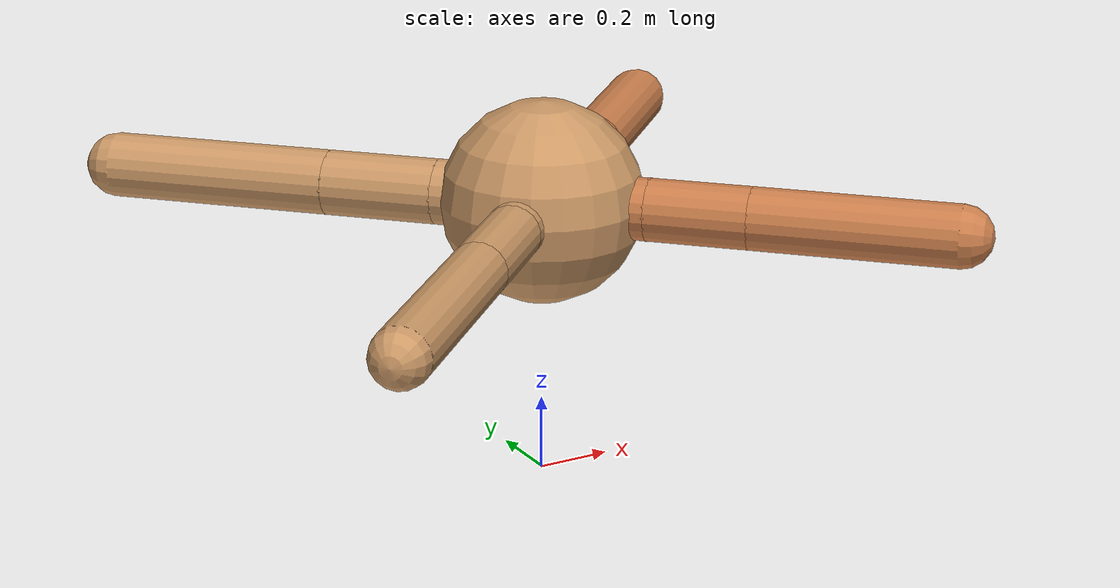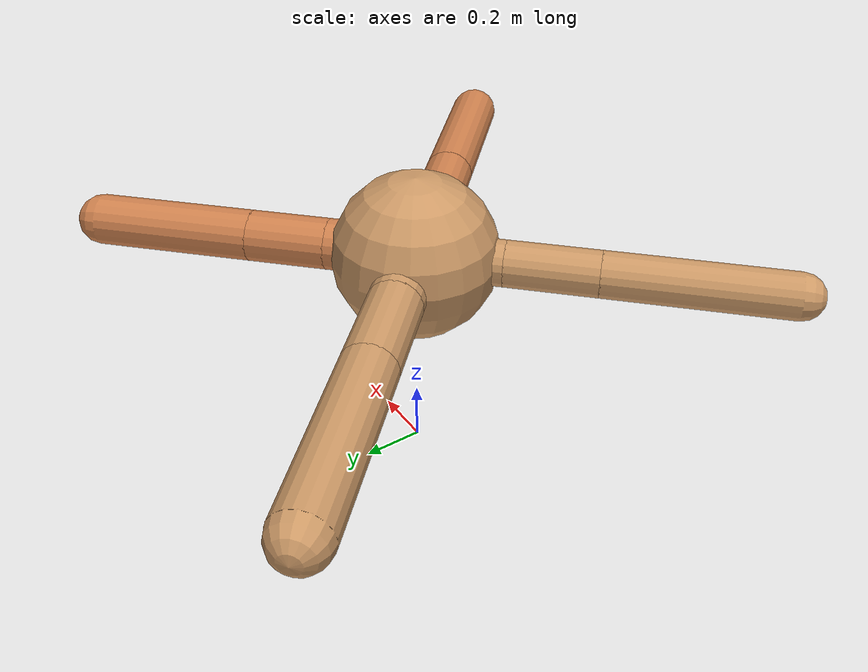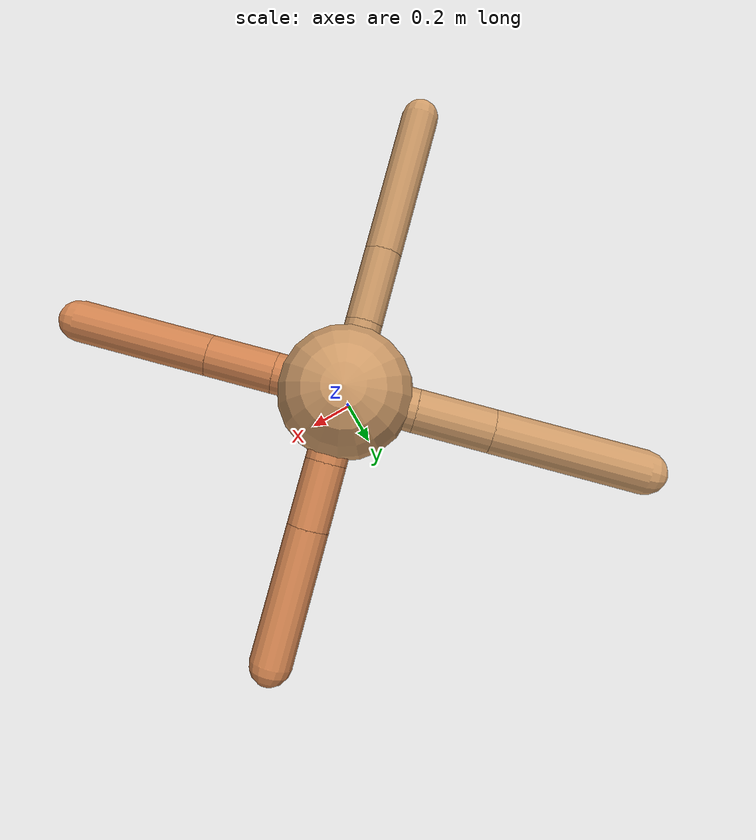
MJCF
<?xml version="1.0" ?>
<mujoco model="ant">

	<compiler angle="degree" coordinate="local" inertiafromgeom="true"/>

	<option integrator="RK4" timestep="0.01"/>

	<custom>

		<numeric data="0.0 0.0 0.55 1.0 0.0 0.0 0.0 0.0 1.0 0.0 -1.0 0.0 -1.0 0.0 1.0" name="init_qpos"/>

	</custom>

	<default>

		<joint armature="1" damping="1" limited="true"/>

		<geom conaffinity="0" condim="3" density="5.0" friction="1.5 0.1 0.1" margin="0.01" rgba="0.8 0.6 0.4 1"/>

	</default>

	<worldbody>

		<body name="torso" pos="0 0 0.75">

			<geom name="torso_geom" pos="0 0 0" size="0.2674514377476636" type="sphere"/>

			<!--joint armature="0" damping="0" limited="false" margin="0.01" name="root" pos="0 0 0" type="free"/-->

			<body name="front_left_leg" pos="0 0 0">

				<geom fromto="0 0 0 0.2 0.2 0" name="aux_1_geom" size="0.08263343891352978" type="capsule" rgba=".8 .5 .3 1"/>

				<body name="aux_1" pos="0.2 0.2 0">

					<joint axis="0 0 1" name="hip_1" pos="0.0 0.0 0.0" range="-40 40" type="hinge"/>

					<geom fromto="0 0 0 0.18139729309425612 0.18139729309425612 0" name="left_leg_geom" size="0.08263343891352978" type="capsule" rgba=".8 .5 .3 1"/>

					<body pos="0.18139729309425612 0.18139729309425612 0" name="front_left_foot">

						<joint axis="-1 1 0" name="ankle_1" pos="0.0 0.0 0.0" range="30 100" type="hinge"/>

						<geom fromto="0 0 0 0.36279458618851224 0.36279458618851224 0" name="left_ankle_geom" size="0.08263343891352978" type="capsule" rgba=".8 .5 .3 1"/>

					</body>

				</body>

			</body>

			<body name="front_right_leg" pos="0 0 0">

				<geom fromto="0 0 0 -0.2 0.2 0" name="aux_2_geom" size="0.08710561756268045" type="capsule"/>

				<body name="aux_2" pos="-0.2 0.2 0">

					<joint axis="0 0 1" name="hip_2" pos="0.0 0.0 0.0" range="-40 40" type="hinge"/>

					<geom fromto="0 0 0 -0.21353642631275296 0.21353642631275296 0" name="right_leg_geom" size="0.08710561756268045" type="capsule"/>

					<body pos="-0.21353642631275296 0.21353642631275296 0" name="front_right_foot">

						<joint axis="1 1 0" name="ankle_2" pos="0.0 0.0 0.0" range="-100 -30" type="hinge"/>

						<geom fromto="0 0 0 -0.4270728526255059 0.4270728526255059 0" name="right_ankle_geom" size="0.08710561756268045" type="capsule"/>

					</body>

				</body>

			</body>

			<body name="left_back_leg" pos="0 0 0">

				<geom fromto="0 0 0 -0.2 -0.2 0" name="aux_3_geom" size="0.07458448675736605" type="capsule"/>

				<body name="aux_3" pos="-0.2 -0.2 0">

					<joint axis="0 0 1" name="hip_3" pos="0.0 0.0 0.0" range="-40 40" type="hinge"/>

					<geom fromto="0 0 0 -0.2079221030076457 -0.2079221030076457 0" name="back_leg_geom" size="0.07458448675736605" type="capsule"/>

					<body pos="-0.2079221030076457 -0.2079221030076457 0" name="left_back_foot">

						<joint axis="-1 1 0" name="ankle_3" pos="0.0 0.0 0.0" range="-100 -30" type="hinge"/>

						<geom fromto="0 0 0 -0.4158442060152914 -0.4158442060152914 0" name="third_ankle_geom" size="0.07458448675736605" type="capsule"/>

					</body>

				</body>

			</body>

			<body name="right_back_leg" pos="0 0 0">

				<geom fromto="0 0 0 0.2 -0.2 0" name="aux_4_geom" size="0.08251170406819233" type="capsule" rgba=".8 .5 .3 1"/>

				<body name="aux_4" pos="0.2 -0.2 0">

					<joint axis="0 0 1" name="hip_4" pos="0.0 0.0 0.0" range="-40 40" type="hinge"/>

					<geom fromto="0 0 0 0.18788907154448778 -0.18788907154448778 0" name="rightback_leg_geom" size="0.08251170406819233" type="capsule" rgba=".8 .5 .3 1"/>

					<body pos="0.18788907154448778 -0.18788907154448778 0" name="right_back_foot">

						<joint axis="1 1 0" name="ankle_4" pos="0.0 0.0 0.0" range="30 100" type="hinge"/>

						<geom fromto="0 0 0 0.37577814308897556 -0.37577814308897556 0" name="fourth_ankle_geom" size="0.08251170406819233" type="capsule" rgba=".8 .5 .3 1"/>

					</body>

				</body>

			</body>

		</body>

	</worldbody>

	<actuator>

		<motor ctrllimited="true" ctrlrange="-1.0 1.0" joint="hip_4" gear="150"/>

		<motor ctrllimited="true" ctrlrange="-1.0 1.0" joint="ankle_4" gear="150"/>

		<motor ctrllimited="true" ctrlrange="-1.0 1.0" joint="hip_1" gear="150"/>

		<motor ctrllimited="true" ctrlrange="-1.0 1.0" joint="ankle_1" gear="150"/>

		<motor ctrllimited="true" ctrlrange="-1.0 1.0" joint="hip_2" gear="150"/>

		<motor ctrllimited="true" ctrlrange="-1.0 1.0" joint="ankle_2" gear="150"/>

		<motor ctrllimited="true" ctrlrange="-1.0 1.0" joint="hip_3" gear="150"/>

		<motor ctrllimited="true" ctrlrange="-1.0 1.0" joint="ankle_3" gear="150"/>

	</actuator>

</mujoco>
